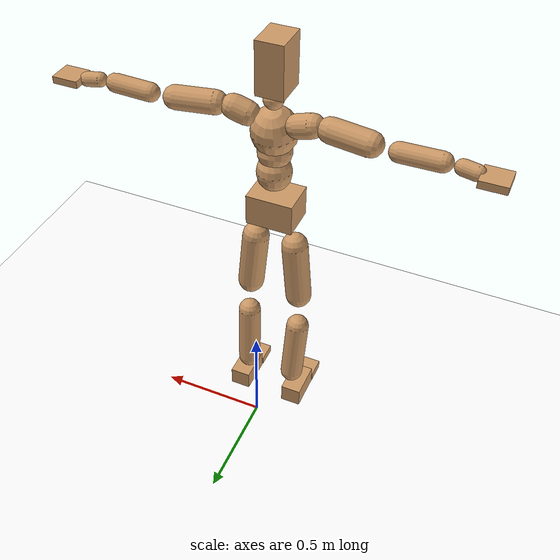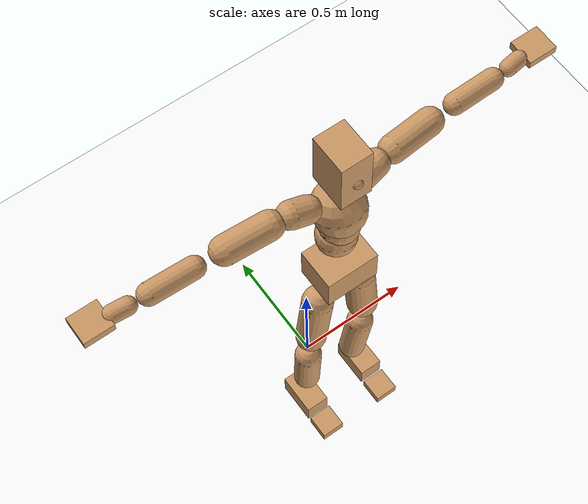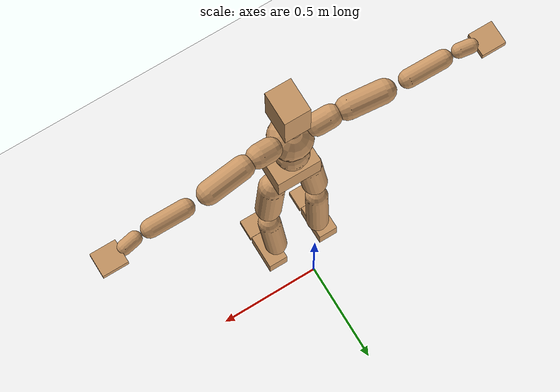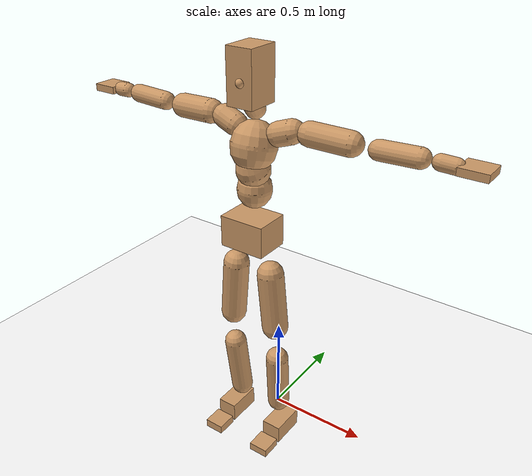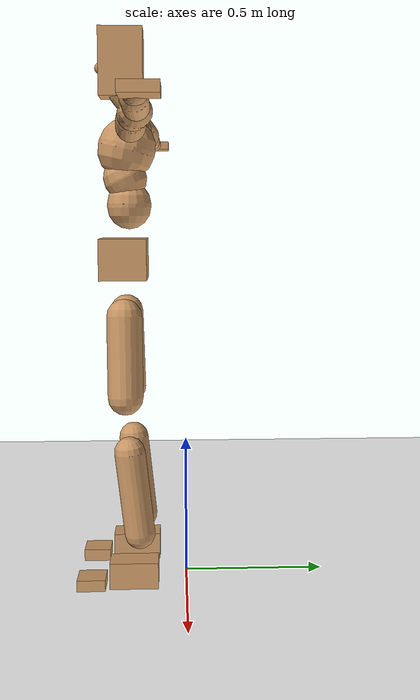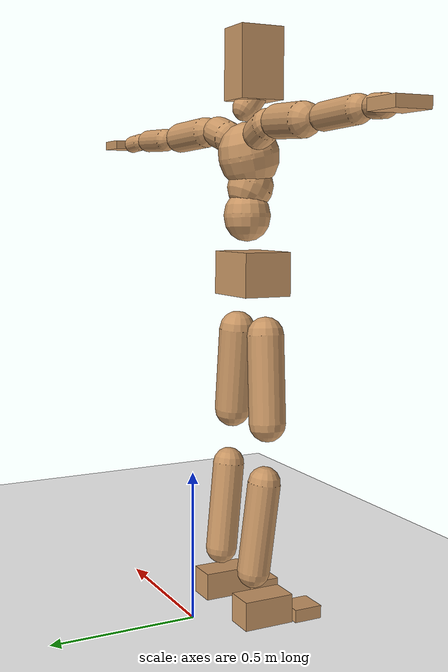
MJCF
<mujoco model="humanoid">
  <option integrator="implicitfast" />

  <visual>
    <global offwidth="1280" offheight="960" />
    <headlight active="1" ambient="0.34 0.34 0.34" diffuse="0.5 0.5 0.5" />
  </visual>

  <default>
    <joint damping="2" stiffness="2" armature="0.01" limited="true" solimplimit="0 .99 .01" />
    <geom condim="1" friction="0.7 0.005 0.0001" solimp=".99 .99 .003" solref="0.015 1" margin="0.001" rgba="0.8 0.6 .4 1" />
    <default class="smplcontact">
      <geom condim="3" friction="1. 0.005 0.0001" solref="0.015 1" solimp="0.98 0.98 0.001" priority="1" />
    </default>
    <default class="stiff_medium">
      <joint stiffness="10" />
    </default>
    <default class="stiff_medium_higher">
      <joint stiffness="50" />
    </default>
    <default class="stiff_high">
      <joint stiffness="100" />
    </default>
  </default>

  <asset>
    <texture type="skybox" builtin="gradient" rgb1="0.99 0.99 0.99" rgb2="0.608 0.828 0.892" width="100" />
    <texture builtin="flat" height="1278" mark="cross" markrgb="1 1 1" name="texgeom" random="0.01" rgb1="0.8 0.6 0.4" rgb2="0.8 0.6 0.4" type="cube" width="127" />
    <texture name="texplane" type="2d" builtin="checker" markrgb="1 1 1" rgb1="0.756 0.772 0.76" rgb2="0.6 0.6 0.6" width="100" height="100" />
    <material name="MatPlane" reflectance="0.5" texture="texplane" texrepeat="1 1" texuniform="true" />
    <material name="geom" texture="texgeom" texuniform="true" />
  </asset>

  <worldbody>
    <light name="tracking_light" pos="0 0 7" dir="0 0 -1" directional="true" cutoff="100" exponent="1" diffuse="1 1 1" specular="0.1 0.1 0.1" mode="trackcom" />
    <camera name="back" pos="0 3 2.4" xyaxes="-1 0 0 0 -1 2" mode="trackcom" />
    <camera name="side" pos="-3 0 2.4" xyaxes="0 -1 0 1 0 2" mode="trackcom" />
    <camera name="front_side" pos="-2.8 -2.8 0.8" xyaxes="0.5 -0.5 0 0.1 0.1 1" mode="trackcom" />
    <geom condim="3" name="floor" pos="0 0 0" rgba="1 1 1 1" size="100 100 .2" type="plane" material="MatPlane" />
    <body name="Pelvis" pos="-0.0018 -0.2233 1.16548" euler="90 0 0">
      <site name="Pelvis" size="0.01" />
      <freejoint name="Pelvis" />
      <geom type="box" pos="-0.0000 -0.0121 -0.0055" size="0.1069 0.0722 0.083" quat="1.0000 0.0000 0.0000 0.0000" density="3165.830099" name="Pelvis" />
      <body name="L_Hip" pos="0.086875 -0.11425 -0.0085">
        <joint name="L_Hip_x" type="hinge" pos="0 0 0" axis="1 0 0" stiffness="14.589841836734694" range="-160.0 22.92" class="stiff_medium" damping="24.10689143795971" armature="0.017703099984975997"/>
        <joint name="L_Hip_y" type="hinge" pos="0 0 0" axis="0 1 0" stiffness="14.527612551020406" range="-70.0 70.0" class="stiff_medium" damping="14.26221347706175" armature="0.014001662871370729"/>
        <joint name="L_Hip_z" type="hinge" pos="0 0 0" axis="0 0 1" stiffness="14.532940204081633" range="-28.65 90.0" class="stiff_medium" damping="16.042326803653772" armature="0.01770847782081624"/>
        <geom type="capsule" density="2040.816327" fromto="0.008625 -0.09375 -0.001125 0.03425 -0.37525 -0.0045" size="0.0615" name="L_Hip" />
        <body name="L_Knee" pos="0.042875 -0.469 -0.005625">
          <joint name="L_Knee_x" type="hinge" pos="0 0 0" axis="1 0 0" range="-5.16 171.89" damping="12.427866473289077" armature="0.01695568739341872" stiffness="2.8466087346938775"/>
          <joint name="L_Knee_y" type="hinge" pos="0 0 0" axis="0 1 0" range="-4.58 6.88" damping="11.131948599716758" armature="0.013404538190087158" stiffness="2.888953489795919"/>
          <joint name="L_Knee_z" type="hinge" pos="0 0 0" axis="0 0 1" range="-6.88 4.58" damping="12.396032357314194" armature="0.016980355499687936" stiffness="2.8279299387755104"/>
          <geom type="capsule" density="1234.567901" fromto="-0.003375 -0.0995 -0.010875 -0.013625 -0.398 -0.04375" size="0.0541" name="L_Knee" />
          <body name="L_Ankle" pos="-0.017 -0.4975 -0.054625">
            <joint name="L_Ankle_x" type="hinge" pos="0 0 0" axis="1 0 0" range="-45.84 45.84" class="stiff_medium" damping="7.851672460898083" armature="0.013699724540716747" stiffness="12.5"/>
            <joint name="L_Ankle_y" type="hinge" pos="0 0 0" axis="0 1 0" range="-74.48 22.92" class="stiff_medium" damping="3.90606547180543" armature="0.013562086640027178" stiffness="12.5"/>
            <joint name="L_Ankle_z" type="hinge" pos="0 0 0" axis="0 0 1" range="-4.58 4.58" class="stiff_medium" damping="7.548153538649568" armature="0.012661027076228444" stiffness="12.5"/>
            <geom type="box" pos="0.029125 -0.029875 0.03025" size="0.0483 0.0464 0.085" quat="1.0000 0.0000 0.0000 0.0000" density="449.071558" name="L_Ankle" class="smplcontact" />
            <body name="L_Toe" pos="0.033 -0.06975 0.149125">
              <joint name="L_Toe_x" type="hinge" pos="0 0 0" axis="1 0 0" range="-91.67 22.92" armature="0.012138557001780983" damping="2.463590570872216" stiffness="2.5"/>
              <joint name="L_Toe_y" type="hinge" pos="0 0 0" axis="0 1 0" range="-4.58 4.58" armature="0.011506786054687943" damping="2.398623152423901" stiffness="2.5"/>
              <joint name="L_Toe_z" type="hinge" pos="0 0 0" axis="0 0 1" range="-4.58 4.58" armature="0.010229379204578858" damping="2.261567952171552" stiffness="2.5"/>
              <geom type="box" pos="-0.00375 0.006875 0.031" size="0.0478 0.02 0.0496" quat="1.0000 0.0000 0.0000 0.0000" density="423.206892" name="L_Toe" class="smplcontact" />
            </body>
          </body>
        </body>
      </body>
      <body name="R_Hip" pos="-0.084625 -0.113125 -0.005375">
        <joint name="R_Hip_x" type="hinge" pos="0 0 0" axis="1 0 0" stiffness="14.589841836734694" range="-160.0 22.92" class="stiff_medium" damping="24.10689143795971" armature="0.017703099984975997"/>
        <joint name="R_Hip_y" type="hinge" pos="0 0 0" axis="0 1 0" stiffness="14.527612551020406" range="-70.0 70.0" class="stiff_medium" damping="14.26221347706175" armature="0.014001662871370729"/>
        <joint name="R_Hip_z" type="hinge" pos="0 0 0" axis="0 0 1" stiffness="14.532940204081633" range="-90.0 28.65" class="stiff_medium" damping="16.042326803653772" armature="0.01770847782081624"/>
        <geom type="capsule" density="2040.816327" fromto="-0.009625 -0.095625 -0.00225 -0.03825 -0.382625 -0.008875" size="0.0606" name="R_Hip" />
        <body name="R_Knee" pos="-0.047875 -0.47825 -0.011125">
          <joint name="R_Knee_x" type="hinge" pos="0 0 0" axis="1 0 0" range="-5.16 171.89" damping="12.427866473289077" armature="0.01695568739341872" stiffness="2.8466087346938775"/>
          <joint name="R_Knee_y" type="hinge" pos="0 0 0" axis="0 1 0" range="-6.88 4.58" damping="11.131948599716758" armature="0.013404538190087158" stiffness="2.888953489795919"/>
          <joint name="R_Knee_z" type="hinge" pos="0 0 0" axis="0 0 1" range="-4.58 6.88" damping="12.396032357314194" armature="0.016980355499687936" stiffness="2.8279299387755104"/>
          <geom type="capsule" density="1234.567901" fromto="0.004 -0.099625 -0.010625 0.01575 -0.398375 -0.04225" size="0.0541" name="R_Knee" />
          <body name="R_Ankle" pos="0.01975 -0.498 -0.052875">
            <joint name="R_Ankle_x" type="hinge" pos="0 0 0" axis="1 0 0" range="-45.84 45.84" class="stiff_medium" damping="7.851672460898083" armature="0.013699724540716747" stiffness="12.5"/>
            <joint name="R_Ankle_y" type="hinge" pos="0 0 0" axis="0 1 0" range="-22.92 74.48" class="stiff_medium" damping="3.90606547180543" armature="0.013562086640027178" stiffness="12.5"/>
            <joint name="R_Ankle_z" type="hinge" pos="0 0 0" axis="0 0 1" range="-4.58 4.58" class="stiff_medium" damping="7.548153538649568" armature="0.012661027076228444" stiffness="12.5"/>
            <geom type="box" pos="-0.0265 -0.02175 0.032" size="0.0483 0.0478 0.0865" quat="1.0000 0.0000 0.0000 0.0000" density="434.700981" name="R_Ankle" class="smplcontact" />
            <body name="R_Toe" pos="-0.03175 -0.060125 0.154125">
              <joint name="R_Toe_x" type="hinge" pos="0 0 0" axis="1 0 0" range="-91.67 22.92" armature="0.012138557001780983" damping="2.463590570872216" stiffness="2.5"/>
              <joint name="R_Toe_y" type="hinge" pos="0 0 0" axis="0 1 0" range="-4.58 4.58" armature="0.011506786054687943" damping="2.398623152423901" stiffness="2.5"/>
              <joint name="R_Toe_z" type="hinge" pos="0 0 0" axis="0 0 1" range="-4.58 4.58" armature="0.010229379204578858" damping="2.261567952171552" stiffness="2.5"/>
              <geom type="box" pos="0.00525 0.005625 0.028375" size="0.0479 0.0216 0.0493" quat="1.0000 0.0000 0.0000 0.0000" density="407.384095" name="R_Toe" class="smplcontact" />
            </body>
          </body>
        </body>
      </body>
      <body name="Torso" pos="-0.0025 0.109 -0.0267">
        <joint name="Torso_x" type="hinge" pos="0 0 0" axis="1 0 0" range="-25.78 57.3" class="stiff_medium" damping="15.601174334598198" armature="0.01047626555893536" stiffness="10.325844081632653"/>
        <joint name="Torso_y" type="hinge" pos="0 0 0" axis="0 1 0" range="-57.3 57.3" class="stiff_high" damping="22.82133861051784" armature="0.012668353656497763" stiffness="102.77844897959183"/>
        <joint name="Torso_z" type="hinge" pos="0 0 0" axis="0 0 1" range="-34.38 34.38" class="stiff_high" damping="21.414857312023496" armature="0.011223378132891131" stiffness="102.15197872340424"/>
        <geom type="capsule" density="2040.816327" fromto="0.0025 0.0608 0.0005 0.003 0.0743 0.0006" size="0.0769" name="Torso" />
        <body name="Spine" pos="0.0055 0.1352 0.0011">
          <joint name="Spine_x" type="hinge" pos="0 0 0" axis="1 0 0" stiffness="10.390365918367348" range="-25.78 57.3" class="stiff_medium" damping="15.726774537984076" armature="0.010579519926301018"/>
          <joint name="Spine_y" type="hinge" pos="0 0 0" axis="0 1 0" stiffness="10.39918551020408" range="-57.3 57.3" class="stiff_high" damping="9.188969975740163" armature="0.012686866367473135"/>
          <joint name="Spine_z" type="hinge" pos="0 0 0" axis="0 0 1" stiffness="20.94420693877551" range="-34.38 34.38" class="stiff_high" damping="13.309204568844793" armature="0.011746481097584326"/>
          <geom type="capsule" density="2040.816327" fromto="0.0007 0.0238 0.0114 0.0008 0.0291 0.014" size="0.0755" name="Spine" />
          <body name="Chest" pos="0.0015 0.0529 0.0254">
            <joint name="Chest_x" type="hinge" pos="0 0 0" axis="1 0 0" stiffness="10.58973530612245" range="-25.78 57.3" class="stiff_medium" damping="15.923502909070246" armature="0.010641665414267268"/>
            <joint name="Chest_y" type="hinge" pos="0 0 0" axis="0 1 0" stiffness="11.123088958333334" range="-57.3 57.3" class="stiff_high" damping="9.50489338620591" armature="0.012690803368218224"/>
            <joint name="Chest_z" type="hinge" pos="0 0 0" axis="0 0 1" stiffness="21.003702448979592" range="-34.38 34.38" class="stiff_high" damping="13.458190566120908" armature="0.011976915720374789"/>
            <geom type="capsule" density="2040.816327" fromto="-0.0009 0.0682 -0.0173 -0.001 0.0833 -0.0212" size="0.1002" name="Chest" />
            <body name="Neck" pos="-0.0028 0.2139 -0.0429">
              <joint name="Neck_x" type="hinge" pos="0 0 0" axis="1 0 0" range="-28.65 57.3" class="stiff_medium_higher" damping="9.999999999999993" armature="0.009999999999999988" stiffness="50.0"/>
              <joint name="Neck_y" type="hinge" pos="0 0 0" axis="0 1 0" range="-40.11 40.11" class="stiff_medium_higher" damping="10.0" armature="0.01" stiffness="50.0"/>
              <joint name="Neck_z" type="hinge" pos="0 0 0" axis="0 0 1" range="-40.11 40.11" class="stiff_medium_higher" damping="10.000000000000007" armature="0.010000000000000016" stiffness="50.0"/>
              <geom type="capsule" density="1000" fromto="0.001 0.013 0.0103 0.0041 0.052 0.0411" size="0.0436" name="Neck" />
              <body name="Head" pos="0.0052 0.065 0.0513">
                <joint name="Head_x" type="hinge" pos="0 0 0" axis="1 0 0" range="-28.65 57.3" class="stiff_medium_higher" damping="2.0000000000000018" armature="0.010000000000000018" stiffness="50.0"/>
                <joint name="Head_y" type="hinge" pos="0 0 0" axis="0 1 0" range="-40.11 40.11" class="stiff_medium_higher" damping="2.0" armature="0.01" stiffness="50.0"/>
                <joint name="Head_z" type="hinge" pos="0 0 0" axis="0 0 1" range="-40.11 40.11" class="stiff_medium_higher" damping="2.000000000000005" armature="0.01000000000000005" stiffness="50.0"/>
                <geom type="box" pos="-0.0042 0.0876 -0.0116" size="0.0606 0.1154 0.076" quat="1.0000 0.0000 0.0000 0.0000" density="1018.069894" name="Head" />
                <geom type="capsule" name="nose" size="0.02 0.01" pos="0 0.07 0.05" quat="1 0 0 0" mass="0" contype="0" conaffinity="0" />
              </body>
            </body>
            <body name="L_Thorax" pos="0.08668 0.13387 -0.03751">
              <joint name="L_Thorax_x" type="hinge" pos="0 0 0" axis="1 0 0" range="-10.89 4.58" class="stiff_medium_higher" damping="23.484953053517103" armature="0.011814903262346977" stiffness="58.352468877551026"/>
              <joint name="L_Thorax_y" type="hinge" pos="0 0 0" axis="0 1 0" range="-28.65 17.19" class="stiff_medium_higher" damping="24.434884191521107" armature="0.012759387174304946" stiffness="58.49257857142858"/>
              <joint name="L_Thorax_z" type="hinge" pos="0 0 0" axis="0 0 1" range="-31.51 40.11" class="stiff_medium_higher" damping="24.43538086785683" armature="0.012760243243334081" stiffness="58.491032142857144"/>
              <geom type="capsule" density="1000" fromto="0.02002 0.00671 -0.00198 0.08008 0.02684 -0.00781" size="0.0521" name="L_Thorax" />
              <body name="L_Shoulder" pos="0.1001 0.03355 -0.00979">
                <joint name="L_Shoulder_x" type="hinge" pos="0 0 0" axis="1 0 0" range="-97.4 97.4" class="stiff_medium" damping="6.925509502213933" armature="0.011436141131748304" stiffness="11.64988"/>
                <joint name="L_Shoulder_y" type="hinge" pos="0 0 0" axis="0 1 0" range="-108.86 80.21" class="stiff_medium" damping="7.316560324521946" armature="0.01272235970311689" stiffness="11.68809530612245"/>
                <joint name="L_Shoulder_z" type="hinge" pos="0 0 0" axis="0 0 1" range="-97.4 85.94" class="stiff_medium" damping="7.3161640813468045" armature="0.012723435702067624" stiffness="11.685841020408162"/>
                <geom type="capsule" density="1000" fromto="0.05709 -0.00286 -0.00605 0.22847 -0.01122 -0.0242" size="0.0517" name="L_Shoulder" />
                <body name="L_Elbow" pos="0.28556 -0.01408 -0.03025">
                  <joint name="L_Elbow_x" type="hinge" pos="0 0 0" axis="1 0 0" range="-17.19 4.58" damping="5.601396344944805" armature="0.010847020977712734" stiffness="2.314046673469388"/>
                  <joint name="L_Elbow_y" type="hinge" pos="0 0 0" axis="0 1 0" range="-180.0 17.19" damping="6.023798480907976" armature="0.012542680731684352" stiffness="2.3144110204081634"/>
                  <joint name="L_Elbow_z" type="hinge" pos="0 0 0" axis="0 0 1" range="-100.84 4.58" damping="6.024346472417806" armature="0.012548321640758897" stiffness="2.313791530612245"/>
                  <geom type="capsule" density="1000" fromto="0.05478 0.00198 -0.00022 0.21934 0.00792 -0.00099" size="0.0405" name="L_Elbow" />
                  <body name="L_Wrist" pos="0.27412 0.0099 -0.00132">
                    <joint name="L_Wrist_x" type="hinge" pos="0 0 0" axis="1 0 0" range="-180.0 22.92" armature="0.010707540477697283" damping="2.1901175856847437" stiffness="2.2398304489795917"/>
                    <joint name="L_Wrist_y" type="hinge" pos="0 0 0" axis="0 1 0" range="-17.19 17.19" armature="0.011962634992803594" damping="2.3179387965844813" stiffness="2.245675918367347"/>
                    <joint name="L_Wrist_z" type="hinge" pos="0 0 0" axis="0 0 1" range="-22.92 22.92" armature="0.012031856829646248" damping="2.3234148559287964" stiffness="2.2433181632653056"/>
                    <geom type="capsule" density="1000" fromto="0.01848 -0.00176 -0.0033 0.07392 -0.00715 -0.0132" size="0.0318" name="L_Wrist" class="smplcontact" />
                    <body name="L_Hand" pos="0.0924 -0.00902 -0.01639">
                      <joint name="L_Hand_x" type="hinge" pos="0 0 0" axis="1 0 0" range="-17.19 17.19" armature="0.010091488937092908" damping="2.1071912899214627" stiffness="2.1999999999999997"/>
                      <joint name="L_Hand_y" type="hinge" pos="0 0 0" axis="0 1 0" range="-51.57 51.57" armature="0.011106432471592853" damping="2.2106176258007295" stiffness="2.1999999999999997"/>
                      <joint name="L_Hand_z" type="hinge" pos="0 0 0" axis="0 0 1" range="-91.67 91.67" armature="0.011376979537969548" damping="2.237380387128349" stiffness="2.1999999999999997"/>
                      <geom type="box" pos="0.05423 0.0011 -0.00638" size="0.0585 0.0158 0.0538" quat="1.0000 0.0000 0.0000 0.0000" density="400.552564" name="L_Hand" class="smplcontact" />
                    </body>
                  </body>
                </body>
              </body>
            </body>
            <body name="R_Thorax" pos="-0.08998 0.13068 -0.04246">
              <joint name="R_Thorax_x" type="hinge" pos="0 0 0" axis="1 0 0" range="-10.89 4.58" class="stiff_medium_higher" damping="23.484953053517103" armature="0.011814903262346977" stiffness="58.352468877551026"/>
              <joint name="R_Thorax_y" type="hinge" pos="0 0 0" axis="0 1 0" range="-17.19 28.65" class="stiff_medium_higher" damping="24.434884191521107" armature="0.012759387174304946" stiffness="58.49257857142858"/>
              <joint name="R_Thorax_z" type="hinge" pos="0 0 0" axis="0 0 1" range="-40.11 31.51" class="stiff_medium_higher" damping="24.43538086785683" armature="0.012760243243334081" stiffness="58.491032142857144"/>
              <geom type="capsule" density="1000" fromto="-0.02112 0.00715 -0.00198 -0.08448 0.0286 -0.00803" size="0.0511" name="R_Thorax" />
              <body name="R_Shoulder" pos="-0.1056 0.03586 -0.01001">
                <joint name="R_Shoulder_x" type="hinge" pos="0 0 0" axis="1 0 0" range="-97.4 97.4" class="stiff_medium" damping="6.925509502213933" armature="0.011436141131748304" stiffness="11.64988"/>
                <joint name="R_Shoulder_y" type="hinge" pos="0 0 0" axis="0 1 0" range="-80.21 108.86" class="stiff_medium" damping="7.316560324521946" armature="0.01272235970311689" stiffness="11.68809530612245"/>
                <joint name="R_Shoulder_z" type="hinge" pos="0 0 0" axis="0 0 1" range="-85.94 97.4" class="stiff_medium" damping="7.3161640813468045" armature="0.012723435702067624" stiffness="11.685841020408162"/>
                <geom type="capsule" density="1000" fromto="-0.05577 -0.00297 -0.00473 -0.2233 -0.01177 -0.01881" size="0.0531" name="R_Shoulder" />
                <body name="R_Elbow" pos="-0.27907 -0.01463 -0.02354">
                  <joint name="R_Elbow_x" type="hinge" pos="0 0 0" axis="1 0 0" range="-17.19 4.58" damping="5.601396344944805" armature="0.010847020977712734" stiffness="2.314046673469388"/>
                  <joint name="R_Elbow_y" type="hinge" pos="0 0 0" axis="0 1 0" range="-17.19 180.0" damping="6.023798480907976" armature="0.012542680731684352" stiffness="2.3144110204081634"/>
                  <joint name="R_Elbow_z" type="hinge" pos="0 0 0" axis="0 0 1" range="-4.58 100.84" damping="6.024346472417806" armature="0.012548321640758897" stiffness="2.313791530612245"/>
                  <geom type="capsule" density="1000" fromto="-0.05621 0.00176 -0.00121 -0.22462 0.00682 -0.00484" size="0.0408" name="R_Elbow" />
                  <body name="R_Wrist" pos="-0.28083 0.00858 -0.00616">
                    <joint name="R_Wrist_x" type="hinge" pos="0 0 0" axis="1 0 0" range="-180.0 22.92" armature="0.010707540477697283" damping="2.1901175856847437" stiffness="2.2398304489795917"/>
                    <joint name="R_Wrist_y" type="hinge" pos="0 0 0" axis="0 1 0" range="-17.19 17.19" armature="0.011962634992803594" damping="2.3179387965844813" stiffness="2.245675918367347"/>
                    <joint name="R_Wrist_z" type="hinge" pos="0 0 0" axis="0 0 1" range="-22.92 22.92" armature="0.012031856829646248" damping="2.3234148559287964" stiffness="2.2433181632653056"/>
                    <geom type="capsule" density="1000" fromto="-0.01859 -0.00132 -0.00231 -0.07447 -0.00539 -0.00913" size="0.0326" name="R_Wrist" class="smplcontact" />
                    <body name="R_Hand" pos="-0.09306 -0.00671 -0.01133">
                      <joint name="R_Hand_x" type="hinge" pos="0 0 0" axis="1 0 0" range="-17.19 17.19" armature="0.010091488937092908" damping="2.1071912899214627" stiffness="2.1999999999999997"/>
                      <joint name="R_Hand_y" type="hinge" pos="0 0 0" axis="0 1 0" range="-51.57 51.57" armature="0.011106432471592853" damping="2.2106176258007295" stiffness="2.1999999999999997"/>
                      <joint name="R_Hand_z" type="hinge" pos="0 0 0" axis="0 0 1" range="-91.67 91.67" armature="0.011376979537969548" damping="2.237380387128349" stiffness="2.1999999999999997"/>
                      <geom type="box" pos="-0.05082 -0.00099 -0.00869" size="0.0569 0.0164 0.0546" quat="1.0000 0.0000 0.0000 0.0000" density="403.679611" name="R_Hand" class="smplcontact" />
                    </body>
                  </body>
                </body>
              </body>
            </body>
          </body>
        </body>
      </body>
    </body>
  </worldbody>
  <actuator>
    <general name="L_Hip_x" joint="L_Hip_x" biastype="affine" gainprm="419.21001901187765" biasprm="-314.15541988928595 -262.6171530612245 -3.2142521917279616" ctrllimited="true" ctrlrange="-1 1" forcerange="-525.234306122449 525.234306122449" />
    <general name="L_Hip_y" joint="L_Hip_y" biastype="affine" gainprm="319.47888605139207" biasprm="0.0 -261.4970259183673 -2.85244269541235" ctrllimited="true" ctrlrange="-1 1" forcerange="-522.9940518367346 522.9940518367346" />
    <general name="L_Hip_z" joint="L_Hip_z" biastype="affine" gainprm="270.857650054052" biasprm="140.0515535677715 -261.5929236734694 -3.2084653607307545" ctrllimited="true" ctrlrange="-1 1" forcerange="-523.1858473469388 523.1858473469388" />
    <general name="L_Knee_x" joint="L_Knee_x" biastype="affine" gainprm="395.8344512323349" biasprm="372.7618077038531 -256.194786122449 -3.1069666183222693" ctrllimited="true" ctrlrange="-1 1" forcerange="-512.389572244898 512.389572244898" />
    <general name="L_Knee_y" joint="L_Knee_y" biastype="affine" gainprm="26.002496647202126" biasprm="5.218651159560636 -260.0058140816327 -2.7829871499291894" ctrllimited="true" ctrlrange="-1 1" forcerange="-520.0116281632654 520.0116281632654" />
    <general name="L_Knee_z" joint="L_Knee_z" biastype="affine" gainprm="25.45324423230062" biasprm="-5.108417254301171 -254.51369448979594 -3.0990080893285485" ctrllimited="true" ctrlrange="-1 1" forcerange="-509.0273889795919 509.0273889795919" />
    <general name="L_Ankle_x" joint="L_Ankle_x" biastype="affine" gainprm="90.00662952534759" biasprm="0.0 -112.5 -2.6172241536326943" ctrllimited="true" ctrlrange="-1 1" forcerange="-225.0 225.0" />
    <general name="L_Ankle_y" joint="L_Ankle_y" biastype="affine" gainprm="95.62222639363935" biasprm="-50.61891163096555 -112.5 -2.6040436478702866" ctrllimited="true" ctrlrange="-1 1" forcerange="-225.0 225.0" />
    <general name="L_Ankle_z" joint="L_Ankle_z" biastype="affine" gainprm="8.992808970900782" biasprm="0.0 -112.5 -2.516051179549856" ctrllimited="true" ctrlrange="-1 1" forcerange="-225.0 225.0" />
    <general name="L_Toe_x" joint="L_Toe_x" biastype="affine" gainprm="89.99877554371359" biasprm="-53.996123733574564 -90.0 -0.9854362283488864" ctrllimited="true" ctrlrange="-1 1" forcerange="-180.0 180.0" />
    <general name="L_Toe_y" joint="L_Toe_y" biastype="affine" gainprm="7.194247176720626" biasprm="0.0 -90.0 -0.9594492609695604" ctrllimited="true" ctrlrange="-1 1" forcerange="-180.0 180.0" />
    <general name="L_Toe_z" joint="L_Toe_z" biastype="affine" gainprm="7.194247176720626" biasprm="0.0 -90.0 -0.9046271808686209" ctrllimited="true" ctrlrange="-1 1" forcerange="-180.0 180.0" />
    <general name="R_Hip_x" joint="R_Hip_x" biastype="affine" gainprm="419.21001901187765" biasprm="-314.15541988928595 -262.6171530612245 -3.2142521917279616" ctrllimited="true" ctrlrange="-1 1" forcerange="-525.234306122449 525.234306122449" />
    <general name="R_Hip_y" joint="R_Hip_y" biastype="affine" gainprm="319.47888605139207" biasprm="0.0 -261.4970259183673 -2.85244269541235" ctrllimited="true" ctrlrange="-1 1" forcerange="-522.9940518367346 522.9940518367346" />
    <general name="R_Hip_z" joint="R_Hip_z" biastype="affine" gainprm="270.857650054052" biasprm="-140.0515535677715 -261.5929236734694 -3.2084653607307545" ctrllimited="true" ctrlrange="-1 1" forcerange="-523.1858473469388 523.1858473469388" />
    <general name="R_Knee_x" joint="R_Knee_x" biastype="affine" gainprm="395.8344512323349" biasprm="372.7618077038531 -256.194786122449 -3.1069666183222693" ctrllimited="true" ctrlrange="-1 1" forcerange="-512.389572244898 512.389572244898" />
    <general name="R_Knee_y" joint="R_Knee_y" biastype="affine" gainprm="26.002496647202126" biasprm="-5.218651159560636 -260.0058140816327 -2.7829871499291894" ctrllimited="true" ctrlrange="-1 1" forcerange="-520.0116281632654 520.0116281632654" />
    <general name="R_Knee_z" joint="R_Knee_z" biastype="affine" gainprm="25.45324423230062" biasprm="5.108417254301171 -254.51369448979594 -3.0990080893285485" ctrllimited="true" ctrlrange="-1 1" forcerange="-509.0273889795919 509.0273889795919" />
    <general name="R_Ankle_x" joint="R_Ankle_x" biastype="affine" gainprm="90.00662952534759" biasprm="0.0 -112.5 -2.6172241536326943" ctrllimited="true" ctrlrange="-1 1" forcerange="-225.0 225.0" />
    <general name="R_Ankle_y" joint="R_Ankle_y" biastype="affine" gainprm="95.62222639363935" biasprm="50.61891163096555 -112.5 -2.6040436478702866" ctrllimited="true" ctrlrange="-1 1" forcerange="-225.0 225.0" />
    <general name="R_Ankle_z" joint="R_Ankle_z" biastype="affine" gainprm="8.992808970900782" biasprm="0.0 -112.5 -2.516051179549856" ctrllimited="true" ctrlrange="-1 1" forcerange="-225.0 225.0" />
    <general name="R_Toe_x" joint="R_Toe_x" biastype="affine" gainprm="89.99877554371359" biasprm="-53.996123733574564 -90.0 -0.9854362283488864" ctrllimited="true" ctrlrange="-1 1" forcerange="-180.0 180.0" />
    <general name="R_Toe_y" joint="R_Toe_y" biastype="affine" gainprm="7.194247176720626" biasprm="0.0 -90.0 -0.9594492609695604" ctrllimited="true" ctrlrange="-1 1" forcerange="-180.0 180.0" />
    <general name="R_Toe_z" joint="R_Toe_z" biastype="affine" gainprm="7.194247176720626" biasprm="0.0 -90.0 -0.9046271808686209" ctrllimited="true" ctrlrange="-1 1" forcerange="-180.0 180.0" />
    <general name="Torso_x" joint="Torso_x" biastype="affine" gainprm="179.67210854115288" biasprm="68.16640420338393 -247.8202579591837 -4.160313155892853" ctrllimited="true" ctrlrange="-1 1" forcerange="-371.73038693877555 371.73038693877555" />
    <general name="Torso_y" joint="Torso_y" biastype="affine" gainprm="246.68644747989222" biasprm="0.0 -246.6682775510204 -4.564267722103568" ctrllimited="true" ctrlrange="-1 1" forcerange="-370.0024163265306 370.0024163265306" />
    <general name="Torso_z" joint="Torso_z" biastype="affine" gainprm="147.10968486781817" biasprm="0.0 -245.16474893617018 -4.282971462404699" ctrllimited="true" ctrlrange="-1 1" forcerange="-367.74712340425526 367.74712340425526" />
    <general name="Spine_x" joint="Spine_x" biastype="affine" gainprm="180.79480363139655" biasprm="68.5923472612135 -249.36878204081634 -4.19380654346242" ctrllimited="true" ctrlrange="-1 1" forcerange="-374.0531730612245 374.0531730612245" />
    <general name="Spine_y" joint="Spine_y" biastype="affine" gainprm="249.59883668861366" biasprm="0.0 -249.58045224489794 -4.594484987870081" ctrllimited="true" ctrlrange="-1 1" forcerange="-374.3706783673469 374.3706783673469" />
    <general name="Spine_z" joint="Spine_z" biastype="affine" gainprm="150.8093979712465" biasprm="0.0 -251.3304832653061 -4.436401522948264" ctrllimited="true" ctrlrange="-1 1" forcerange="-376.9957248979592 376.9957248979592" />
    <general name="Chest_x" joint="Chest_x" biastype="affine" gainprm="184.26387773258654" biasprm="69.90849092598852 -254.15364734693878 -4.246267442418732" ctrllimited="true" ctrlrange="-1 1" forcerange="-381.2304710204082 381.2304710204082" />
    <general name="Chest_y" joint="Chest_y" biastype="affine" gainprm="266.97379921338467" biasprm="0.0 -266.954135 -4.752446693102955" ctrllimited="true" ctrlrange="-1 1" forcerange="-400.43120250000004 400.43120250000004" />
    <general name="Chest_z" joint="Chest_z" biastype="affine" gainprm="151.23779719887534" biasprm="0.0 -252.0444293877551 -4.486063522040303" ctrllimited="true" ctrlrange="-1 1" forcerange="-378.06664408163266 378.06664408163266" />
    <general name="Neck_x" joint="Neck_x" biastype="affine" gainprm="27.00198885760427" biasprm="9.000662952534757 -36.0 -0.7999999999999995" ctrllimited="true" ctrlrange="-1 1" forcerange="-72.0 72.0" />
    <general name="Neck_y" joint="Neck_y" biastype="affine" gainprm="25.20185626709732" biasprm="0.0 -36.0 -0.8" ctrllimited="true" ctrlrange="-1 1" forcerange="-72.0 72.0" />
    <general name="Neck_z" joint="Neck_z" biastype="affine" gainprm="25.20185626709732" biasprm="0.0 -36.0 -0.8000000000000006" ctrllimited="true" ctrlrange="-1 1" forcerange="-72.0 72.0" />
    <general name="Head_x" joint="Head_x" biastype="affine" gainprm="18.001325905069514" biasprm="6.000441968356505 -24.0 -0.8000000000000007" ctrllimited="true" ctrlrange="-1 1" forcerange="-48.0 48.0" />
    <general name="Head_y" joint="Head_y" biastype="affine" gainprm="16.801237511398213" biasprm="0.0 -24.0 -0.8" ctrllimited="true" ctrlrange="-1 1" forcerange="-48.0 48.0" />
    <general name="Head_z" joint="Head_z" biastype="affine" gainprm="16.801237511398213" biasprm="0.0 -24.0 -0.800000000000002" ctrllimited="true" ctrlrange="-1 1" forcerange="-48.0 48.0" />
    <general name="L_Thorax_x" joint="L_Thorax_x" biastype="affine" gainprm="18.906370442093692" biasprm="-7.711648189373708 -140.04592530612246 -1.8787962442813684" ctrllimited="true" ctrlrange="-1 1" forcerange="-280.0918506122449 280.0918506122449" />
    <general name="L_Thorax_y" joint="L_Thorax_y" biastype="affine" gainprm="56.157011727582464" biasprm="-14.039252931895616 -140.38218857142857 -1.9547907353216887" ctrllimited="true" ctrlrange="-1 1" forcerange="-280.76437714285714 280.76437714285714" />
    <general name="L_Thorax_z" joint="L_Thorax_z" biastype="affine" gainprm="87.73688584405964" biasprm="10.535286487837375 -140.37847714285715 -1.9548304694285463" ctrllimited="true" ctrlrange="-1 1" forcerange="-280.7569542857143 280.7569542857143" />
    <general name="L_Shoulder_x" joint="L_Shoulder_x" biastype="affine" gainprm="95.06026349386505" biasprm="0.0 -55.91942399999999 -1.8468025339237155" ctrllimited="true" ctrlrange="-1 1" forcerange="-111.83884799999998 111.83884799999998" />
    <general name="L_Shoulder_y" joint="L_Shoulder_y" biastype="affine" gainprm="92.56674184278414" biasprm="-14.026747521001564 -56.10285746938776 -1.9510827532058526" ctrllimited="true" ctrlrange="-1 1" forcerange="-112.20571493877551 112.20571493877551" />
    <general name="L_Shoulder_z" joint="L_Shoulder_z" biastype="affine" gainprm="89.7440800375507" biasprm="-5.609616871551944 -56.09203689795918 -1.950977088359148" ctrllimited="true" ctrlrange="-1 1" forcerange="-112.18407379591837 112.18407379591837" />
    <general name="L_Elbow_x" joint="L_Elbow_x" biastype="affine" gainprm="15.82633724808071" biasprm="-9.167207749117953 -83.30568024489797 -0.896223415191169" ctrllimited="true" ctrlrange="-1 1" forcerange="-166.61136048979594 166.61136048979594" />
    <general name="L_Elbow_y" joint="L_Elbow_y" biastype="affine" gainprm="143.37559998082332" biasprm="-118.37811974683223 -83.31879673469388 -0.9638077569452762" ctrllimited="true" ctrlrange="-1 1" forcerange="-166.63759346938775 166.63759346938775" />
    <general name="L_Elbow_z" joint="L_Elbow_z" biastype="affine" gainprm="76.62969758228138" biasprm="-69.9713023076305 -83.29649510204082 -0.9638954355868489" ctrllimited="true" ctrlrange="-1 1" forcerange="-166.59299020408164 166.59299020408164" />
    <general name="L_Wrist_x" joint="L_Wrist_x" biastype="affine" gainprm="23.797899177015026" biasprm="-18.421910125791054 -13.43898269387755 -0.8760470342738975" ctrllimited="true" ctrlrange="-1 1" forcerange="-26.8779653877551 26.8779653877551" />
    <general name="L_Wrist_y" joint="L_Wrist_y" biastype="affine" gainprm="4.042514408369691" biasprm="0.0 -13.474055510204082 -0.9271755186337926" ctrllimited="true" ctrlrange="-1 1" forcerange="-26.948111020408163 26.948111020408163" />
    <general name="L_Wrist_z" joint="L_Wrist_z" biastype="affine" gainprm="5.384360182093428" biasprm="0.0 -13.459908979591834 -0.9293659423715186" ctrllimited="true" ctrlrange="-1 1" forcerange="-26.919817959183668 26.919817959183668" />
    <general name="L_Hand_x" joint="L_Hand_x" biastype="affine" gainprm="3.9602916991152934" biasprm="0.0 -13.2 -0.8428765159685851" ctrllimited="true" ctrlrange="-1 1" forcerange="-26.4 26.4" />
    <general name="L_Hand_y" joint="L_Hand_y" biastype="affine" gainprm="11.880875097345879" biasprm="0.0 -13.2 -0.8842470503202918" ctrllimited="true" ctrlrange="-1 1" forcerange="-26.4 26.4" />
    <general name="L_Hand_z" joint="L_Hand_z" biastype="affine" gainprm="21.11925189400226" biasprm="0.0 -13.2 -0.8949521548513396" ctrllimited="true" ctrlrange="-1 1" forcerange="-26.4 26.4" />
    <general name="R_Thorax_x" joint="R_Thorax_x" biastype="affine" gainprm="18.906370442093692" biasprm="-7.711648189373708 -140.04592530612246 -1.8787962442813684" ctrllimited="true" ctrlrange="-1 1" forcerange="-280.0918506122449 280.0918506122449" />
    <general name="R_Thorax_y" joint="R_Thorax_y" biastype="affine" gainprm="56.157011727582464" biasprm="14.039252931895607 -140.38218857142857 -1.9547907353216887" ctrllimited="true" ctrlrange="-1 1" forcerange="-280.76437714285714 280.76437714285714" />
    <general name="R_Thorax_z" joint="R_Thorax_z" biastype="affine" gainprm="87.73688584405964" biasprm="-10.535286487837375 -140.37847714285715 -1.9548304694285463" ctrllimited="true" ctrlrange="-1 1" forcerange="-280.7569542857143 280.7569542857143" />
    <general name="R_Shoulder_x" joint="R_Shoulder_x" biastype="affine" gainprm="95.06026349386505" biasprm="0.0 -55.91942399999999 -1.8468025339237155" ctrllimited="true" ctrlrange="-1 1" forcerange="-111.83884799999998 111.83884799999998" />
    <general name="R_Shoulder_y" joint="R_Shoulder_y" biastype="affine" gainprm="92.56674184278414" biasprm="14.026747521001564 -56.10285746938776 -1.9510827532058526" ctrllimited="true" ctrlrange="-1 1" forcerange="-112.20571493877551 112.20571493877551" />
    <general name="R_Shoulder_z" joint="R_Shoulder_z" biastype="affine" gainprm="89.7440800375507" biasprm="5.609616871551932 -56.09203689795918 -1.950977088359148" ctrllimited="true" ctrlrange="-1 1" forcerange="-112.18407379591837 112.18407379591837" />
    <general name="R_Elbow_x" joint="R_Elbow_x" biastype="affine" gainprm="15.82633724808071" biasprm="-9.167207749117953 -83.30568024489797 -0.896223415191169" ctrllimited="true" ctrlrange="-1 1" forcerange="-166.61136048979594 166.61136048979594" />
    <general name="R_Elbow_y" joint="R_Elbow_y" biastype="affine" gainprm="143.37559998082332" biasprm="118.37811974683223 -83.31879673469388 -0.9638077569452762" ctrllimited="true" ctrlrange="-1 1" forcerange="-166.63759346938775 166.63759346938775" />
    <general name="R_Elbow_z" joint="R_Elbow_z" biastype="affine" gainprm="76.62969758228138" biasprm="69.97130230763048 -83.29649510204082 -0.9638954355868489" ctrllimited="true" ctrlrange="-1 1" forcerange="-166.59299020408164 166.59299020408164" />
    <general name="R_Wrist_x" joint="R_Wrist_x" biastype="affine" gainprm="23.797899177015026" biasprm="-18.421910125791054 -13.43898269387755 -0.8760470342738975" ctrllimited="true" ctrlrange="-1 1" forcerange="-26.8779653877551 26.8779653877551" />
    <general name="R_Wrist_y" joint="R_Wrist_y" biastype="affine" gainprm="4.042514408369691" biasprm="0.0 -13.474055510204082 -0.9271755186337926" ctrllimited="true" ctrlrange="-1 1" forcerange="-26.948111020408163 26.948111020408163" />
    <general name="R_Wrist_z" joint="R_Wrist_z" biastype="affine" gainprm="5.384360182093428" biasprm="0.0 -13.459908979591834 -0.9293659423715186" ctrllimited="true" ctrlrange="-1 1" forcerange="-26.919817959183668 26.919817959183668" />
    <general name="R_Hand_x" joint="R_Hand_x" biastype="affine" gainprm="3.9602916991152934" biasprm="0.0 -13.2 -0.8428765159685851" ctrllimited="true" ctrlrange="-1 1" forcerange="-26.4 26.4" />
    <general name="R_Hand_y" joint="R_Hand_y" biastype="affine" gainprm="11.880875097345879" biasprm="0.0 -13.2 -0.8842470503202918" ctrllimited="true" ctrlrange="-1 1" forcerange="-26.4 26.4" />
    <general name="R_Hand_z" joint="R_Hand_z" biastype="affine" gainprm="21.11925189400226" biasprm="0.0 -13.2 -0.8949521548513396" ctrllimited="true" ctrlrange="-1 1" forcerange="-26.4 26.4" />
  </actuator>
  <contact>
    <exclude body1="Torso" body2="Chest" />
    <exclude body1="Head" body2="Chest" />
    <exclude body1="R_Knee" body2="R_Toe" />
    <exclude body1="R_Knee" body2="L_Ankle" />
    <exclude body1="R_Knee" body2="L_Toe" />
    <exclude body1="L_Knee" body2="L_Toe" />
    <exclude body1="L_Knee" body2="R_Ankle" />
    <exclude body1="L_Knee" body2="R_Toe" />
    <exclude body1="L_Shoulder" body2="Chest" />
    <exclude body1="R_Shoulder" body2="Chest" />
  </contact>
  <sensor>
    <framelinvel name="sensor_Pelvis_framelinvel" objtype="xbody" objname="Pelvis" />
    <framelinvel name="sensor_L_Hip_framelinvel" objtype="xbody" objname="L_Hip" />
    <framelinvel name="sensor_L_Knee_framelinvel" objtype="xbody" objname="L_Knee" />
    <framelinvel name="sensor_L_Ankle_framelinvel" objtype="xbody" objname="L_Ankle" />
    <framelinvel name="sensor_L_Toe_framelinvel" objtype="xbody" objname="L_Toe" />
    <framelinvel name="sensor_R_Hip_framelinvel" objtype="xbody" objname="R_Hip" />
    <framelinvel name="sensor_R_Knee_framelinvel" objtype="xbody" objname="R_Knee" />
    <framelinvel name="sensor_R_Ankle_framelinvel" objtype="xbody" objname="R_Ankle" />
    <framelinvel name="sensor_R_Toe_framelinvel" objtype="xbody" objname="R_Toe" />
    <framelinvel name="sensor_Torso_framelinvel" objtype="xbody" objname="Torso" />
    <framelinvel name="sensor_Spine_framelinvel" objtype="xbody" objname="Spine" />
    <framelinvel name="sensor_Chest_framelinvel" objtype="xbody" objname="Chest" />
    <framelinvel name="sensor_Neck_framelinvel" objtype="xbody" objname="Neck" />
    <framelinvel name="sensor_Head_framelinvel" objtype="xbody" objname="Head" />
    <framelinvel name="sensor_L_Thorax_framelinvel" objtype="xbody" objname="L_Thorax" />
    <framelinvel name="sensor_L_Shoulder_framelinvel" objtype="xbody" objname="L_Shoulder" />
    <framelinvel name="sensor_L_Elbow_framelinvel" objtype="xbody" objname="L_Elbow" />
    <framelinvel name="sensor_L_Wrist_framelinvel" objtype="xbody" objname="L_Wrist" />
    <framelinvel name="sensor_L_Hand_framelinvel" objtype="xbody" objname="L_Hand" />
    <framelinvel name="sensor_R_Thorax_framelinvel" objtype="xbody" objname="R_Thorax" />
    <framelinvel name="sensor_R_Shoulder_framelinvel" objtype="xbody" objname="R_Shoulder" />
    <framelinvel name="sensor_R_Elbow_framelinvel" objtype="xbody" objname="R_Elbow" />
    <framelinvel name="sensor_R_Wrist_framelinvel" objtype="xbody" objname="R_Wrist" />
    <framelinvel name="sensor_R_Hand_framelinvel" objtype="xbody" objname="R_Hand" />
    <frameangvel name="sensor_Pelvis_frameangvel" objtype="xbody" objname="Pelvis" />
    <frameangvel name="sensor_L_Hip_frameangvel" objtype="xbody" objname="L_Hip" />
    <frameangvel name="sensor_L_Knee_frameangvel" objtype="xbody" objname="L_Knee" />
    <frameangvel name="sensor_L_Ankle_frameangvel" objtype="xbody" objname="L_Ankle" />
    <frameangvel name="sensor_L_Toe_frameangvel" objtype="xbody" objname="L_Toe" />
    <frameangvel name="sensor_R_Hip_frameangvel" objtype="xbody" objname="R_Hip" />
    <frameangvel name="sensor_R_Knee_frameangvel" objtype="xbody" objname="R_Knee" />
    <frameangvel name="sensor_R_Ankle_frameangvel" objtype="xbody" objname="R_Ankle" />
    <frameangvel name="sensor_R_Toe_frameangvel" objtype="xbody" objname="R_Toe" />
    <frameangvel name="sensor_Torso_frameangvel" objtype="xbody" objname="Torso" />
    <frameangvel name="sensor_Spine_frameangvel" objtype="xbody" objname="Spine" />
    <frameangvel name="sensor_Chest_frameangvel" objtype="xbody" objname="Chest" />
    <frameangvel name="sensor_Neck_frameangvel" objtype="xbody" objname="Neck" />
    <frameangvel name="sensor_Head_frameangvel" objtype="xbody" objname="Head" />
    <frameangvel name="sensor_L_Thorax_frameangvel" objtype="xbody" objname="L_Thorax" />
    <frameangvel name="sensor_L_Shoulder_frameangvel" objtype="xbody" objname="L_Shoulder" />
    <frameangvel name="sensor_L_Elbow_frameangvel" objtype="xbody" objname="L_Elbow" />
    <frameangvel name="sensor_L_Wrist_frameangvel" objtype="xbody" objname="L_Wrist" />
    <frameangvel name="sensor_L_Hand_frameangvel" objtype="xbody" objname="L_Hand" />
    <frameangvel name="sensor_R_Thorax_frameangvel" objtype="xbody" objname="R_Thorax" />
    <frameangvel name="sensor_R_Shoulder_frameangvel" objtype="xbody" objname="R_Shoulder" />
    <frameangvel name="sensor_R_Elbow_frameangvel" objtype="xbody" objname="R_Elbow" />
    <frameangvel name="sensor_R_Wrist_frameangvel" objtype="xbody" objname="R_Wrist" />
    <frameangvel name="sensor_R_Hand_frameangvel" objtype="xbody" objname="R_Hand" />
    <subtreelinvel name="Chest_subtreelinvel" body="Chest" />
    <gyro name="Pelvis_gyro" site="Pelvis" />
  </sensor>
</mujoco>
